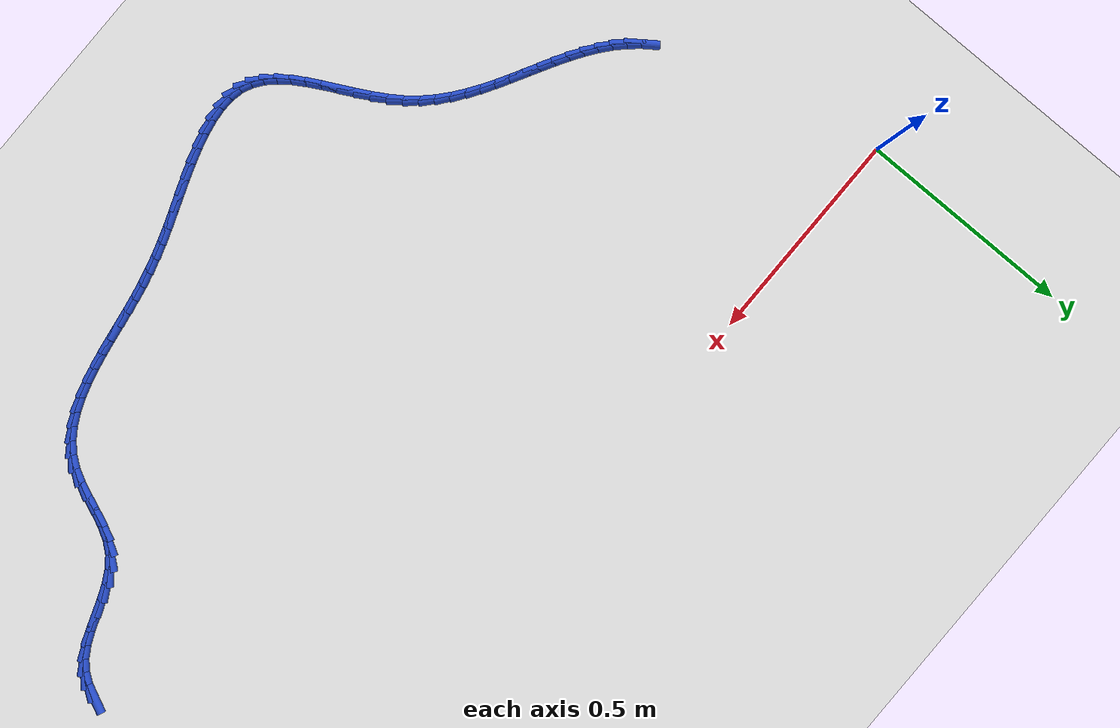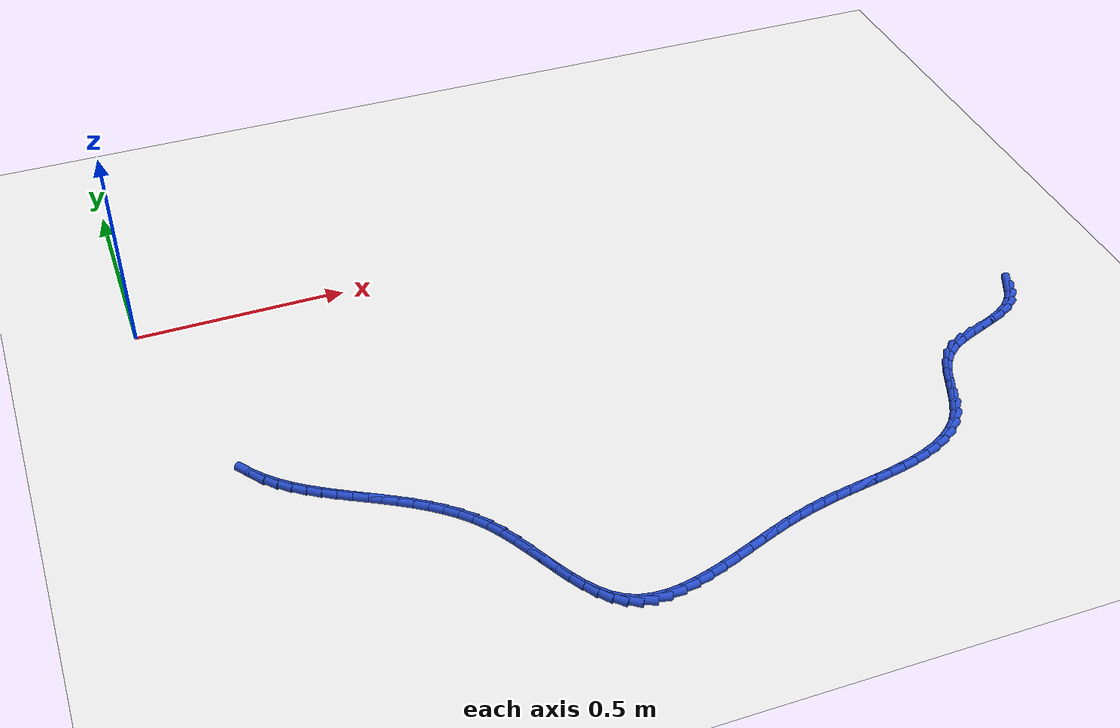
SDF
<sdf version="1.6">
 <world name="default">
  <model name="ground_plane">
   <static>1</static>
   <link name="link">
    <collision name="collision">
     <geometry><plane><normal>0 0 1</normal><size>100 100</size></plane></geometry>
     <surface><friction><ode><mu>100</mu><mu2>50</mu2></ode></friction></surface>
    </collision>
    <visual name="visual">
     <cast_shadows>0</cast_shadows>
     <geometry><plane><normal>0 0 1</normal><size>100 100</size></plane></geometry>
     <material>
      <script><uri>file://media/materials/scripts/gazebo.material</uri><name>Gazebo/WhiteGlow</name></script>
     </material>
    </visual>
   </link>
  </model>
  <model name="line">
   <link name="link_123">
    <pose>2.011440774890187 -0.5427158284624358 0.01 0 1.57 1.1276350709126346</pose>
    <collision name="collision">
     <geometry><cylinder><radius>0.01</radius><length>0.08</length></cylinder></geometry>
    </collision>
    <visual name="visual">
     <material>
      <script><name>Gazebo/Blue</name><uri>file://media/materials/scripts/gazebo.material</uri></script>
     </material>
     <geometry><cylinder><radius>0.01</radius><length>0.08</length></cylinder></geometry>
    </visual>
   </link>
   <link name="link_124">
    <pose>1.998832222102711 -0.5692798245409773 0.01 0 1.57 0.941484728141417</pose>
    <collision name="collision">
     <geometry><cylinder><radius>0.01</radius><length>0.08</length></cylinder></geometry>
    </collision>
    <visual name="visual">
     <material>
      <script><name>Gazebo/Blue</name><uri>file://media/materials/scripts/gazebo.material</uri></script>
     </material>
     <geometry><cylinder><radius>0.01</radius><length>0.08</length></cylinder></geometry>
    </visual>
   </link>
   <link name="link_125">
    <pose>1.9818800783524775 -0.5925637885946919 0.01 0 1.57 0.7327778433180387</pose>
    <collision name="collision">
     <geometry><cylinder><radius>0.01</radius><length>0.08</length></cylinder></geometry>
    </collision>
    <visual name="visual">
     <material>
      <script><name>Gazebo/Blue</name><uri>file://media/materials/scripts/gazebo.material</uri></script>
     </material>
     <geometry><cylinder><radius>0.01</radius><length>0.08</length></cylinder></geometry>
    </visual>
   </link>
   <link name="link_126">
    <pose>1.9600885038887024 -0.612174736084917 0.01 0 1.57 0.5379487129342684</pose>
    <collision name="collision">
     <geometry><cylinder><radius>0.01</radius><length>0.08</length></cylinder></geometry>
    </collision>
    <visual name="visual">
     <material>
      <script><name>Gazebo/Blue</name><uri>file://media/materials/scripts/gazebo.material</uri></script>
     </material>
     <geometry><cylinder><radius>0.01</radius><length>0.08</length></cylinder></geometry>
    </visual>
   </link>
   <link name="link_127">
    <pose>1.9334055124824718 -0.6280950013952556 0.01 0 1.57 0.4144781267353593</pose>
    <collision name="collision">
     <geometry><cylinder><radius>0.01</radius><length>0.08</length></cylinder></geometry>
    </collision>
    <visual name="visual">
     <material>
      <script><name>Gazebo/Blue</name><uri>file://media/materials/scripts/gazebo.material</uri></script>
     </material>
     <geometry><cylinder><radius>0.01</radius><length>0.08</length></cylinder></geometry>
    </visual>
   </link>
   <link name="link_128">
    <pose>1.9031035322931327 -0.6414268329267472 0.01 0 1.57 0.3561337204085206</pose>
    <collision name="collision">
     <geometry><cylinder><radius>0.01</radius><length>0.08</length></cylinder></geometry>
    </collision>
    <visual name="visual">
     <material>
      <script><name>Gazebo/Blue</name><uri>file://media/materials/scripts/gazebo.material</uri></script>
     </material>
     <geometry><cylinder><radius>0.01</radius><length>0.08</length></cylinder></geometry>
    </visual>
   </link>
   <link name="link_129">
    <pose>1.8707009320899681 -0.6534804444566524 0.01 0 1.57 0.35120852694235777</pose>
    <collision name="collision">
     <geometry><cylinder><radius>0.01</radius><length>0.08</length></cylinder></geometry>
    </collision>
    <visual name="visual">
     <material>
      <script><name>Gazebo/Blue</name><uri>file://media/materials/scripts/gazebo.material</uri></script>
     </material>
     <geometry><cylinder><radius>0.01</radius><length>0.08</length></cylinder></geometry>
    </visual>
   </link>
   <link name="link_130">
    <pose>1.8377160806422648 -0.6655660497622327 0.01 0 1.57 0.3967615347960139</pose>
    <collision name="collision">
     <geometry><cylinder><radius>0.01</radius><length>0.08</length></cylinder></geometry>
    </collision>
    <visual name="visual">
     <material>
      <script><name>Gazebo/Blue</name><uri>file://media/materials/scripts/gazebo.material</uri></script>
     </material>
     <geometry><cylinder><radius>0.01</radius><length>0.08</length></cylinder></geometry>
    </visual>
   </link>
   <link name="link_131">
    <pose>1.8056673467193067 -0.6789938626207493 0.01 0 1.57 0.4977285231843481</pose>
    <collision name="collision">
     <geometry><cylinder><radius>0.01</radius><length>0.08</length></cylinder></geometry>
    </collision>
    <visual name="visual">
     <material>
      <script><name>Gazebo/Blue</name><uri>file://media/materials/scripts/gazebo.material</uri></script>
     </material>
     <geometry><cylinder><radius>0.01</radius><length>0.08</length></cylinder></geometry>
    </visual>
   </link>
   <link name="link_132">
    <pose>1.7760730990903797 -0.6950740968094637 0.01 0 1.57 0.6638366270123021</pose>
    <collision name="collision">
     <geometry><cylinder><radius>0.01</radius><length>0.08</length></cylinder></geometry>
    </collision>
    <visual name="visual">
     <material>
      <script><name>Gazebo/Blue</name><uri>file://media/materials/scripts/gazebo.material</uri></script>
     </material>
     <geometry><cylinder><radius>0.01</radius><length>0.08</length></cylinder></geometry>
    </visual>
   </link>
   <link name="link_133">
    <pose>1.750451706524768 -0.7151169661056359 0.01 0 1.57 0.8802963728106666</pose>
    <collision name="collision">
     <geometry><cylinder><radius>0.01</radius><length>0.08</length></cylinder></geometry>
    </collision>
    <visual name="visual">
     <material>
      <script><name>Gazebo/Blue</name><uri>file://media/materials/scripts/gazebo.material</uri></script>
     </material>
     <geometry><cylinder><radius>0.01</radius><length>0.08</length></cylinder></geometry>
    </visual>
   </link>
   <link name="link_134">
    <pose>1.7298764774451143 -0.7400211088700062 0.01 0 1.57 1.0501637688929049</pose>
    <collision name="collision">
     <geometry><cylinder><radius>0.01</radius><length>0.08</length></cylinder></geometry>
    </collision>
    <visual name="visual">
     <material>
      <script><name>Gazebo/Blue</name><uri>file://media/materials/scripts/gazebo.material</uri></script>
     </material>
     <geometry><cylinder><radius>0.01</radius><length>0.08</length></cylinder></geometry>
    </visual>
   </link>
   <link name="link_135">
    <pose>1.7133772291660747 -0.768795418150637 0.01 0 1.57 1.1484908783348342</pose>
    <collision name="collision">
     <geometry><cylinder><radius>0.01</radius><length>0.08</length></cylinder></geometry>
    </collision>
    <visual name="visual">
     <material>
      <script><name>Gazebo/Blue</name><uri>file://media/materials/scripts/gazebo.material</uri></script>
     </material>
     <geometry><cylinder><radius>0.01</radius><length>0.08</length></cylinder></geometry>
    </visual>
   </link>
   <link name="link_136">
    <pose>1.6993976437584022 -0.7999067507100246 0.01 0 1.57 1.183549425898019</pose>
    <collision name="collision">
     <geometry><cylinder><radius>0.01</radius><length>0.08</length></cylinder></geometry>
    </collision>
    <visual name="visual">
     <material>
      <script><name>Gazebo/Blue</name><uri>file://media/materials/scripts/gazebo.material</uri></script>
     </material>
     <geometry><cylinder><radius>0.01</radius><length>0.08</length></cylinder></geometry>
    </visual>
   </link>
   <link name="link_137">
    <pose>1.6863813536909753 -0.831821917440679 0.01 0 1.57 1.159312930899949</pose>
    <collision name="collision">
     <geometry><cylinder><radius>0.01</radius><length>0.08</length></cylinder></geometry>
    </collision>
    <visual name="visual">
     <material>
      <script><name>Gazebo/Blue</name><uri>file://media/materials/scripts/gazebo.material</uri></script>
     </material>
     <geometry><cylinder><radius>0.01</radius><length>0.08</length></cylinder></geometry>
    </visual>
   </link>
   <link name="link_138">
    <pose>1.6727719914326735 -0.8630077292351106 0.01 0 1.57 1.0719167255808504</pose>
    <collision name="collision">
     <geometry><cylinder><radius>0.01</radius><length>0.08</length></cylinder></geometry>
    </collision>
    <visual name="visual">
     <material>
      <script><name>Gazebo/Blue</name><uri>file://media/materials/scripts/gazebo.material</uri></script>
     </material>
     <geometry><cylinder><radius>0.01</radius><length>0.08</length></cylinder></geometry>
    </visual>
   </link>
   <link name="link_139">
    <pose>1.6570131894523747 -0.8919309969858273 0.01 0 1.57 0.9175474965546561</pose>
    <collision name="collision">
     <geometry><cylinder><radius>0.01</radius><length>0.08</length></cylinder></geometry>
    </collision>
    <visual name="visual">
     <material>
      <script><name>Gazebo/Blue</name><uri>file://media/materials/scripts/gazebo.material</uri></script>
     </material>
     <geometry><cylinder><radius>0.01</radius><length>0.08</length></cylinder></geometry>
    </visual>
   </link>
   <link name="link_140">
    <pose>1.637683278868687 -0.9171875141560331 0.01 0 1.57 0.746915465940482</pose>
    <collision name="collision">
     <geometry><cylinder><radius>0.01</radius><length>0.08</length></cylinder></geometry>
    </collision>
    <visual name="visual">
     <material>
      <script><name>Gazebo/Blue</name><uri>file://media/materials/scripts/gazebo.material</uri></script>
     </material>
     <geometry><cylinder><radius>0.01</radius><length>0.08</length></cylinder></geometry>
    </visual>
   </link>
   <link name="link_141">
    <pose>1.614599635375489 -0.9385595386229677 0.01 0 1.57 0.5968930270052403</pose>
    <collision name="collision">
     <geometry><cylinder><radius>0.01</radius><length>0.08</length></cylinder></geometry>
    </collision>
    <visual name="visual">
     <material>
      <script><name>Gazebo/Blue</name><uri>file://media/materials/scripts/gazebo.material</uri></script>
     </material>
     <geometry><cylinder><radius>0.01</radius><length>0.08</length></cylinder></geometry>
    </visual>
   </link>
   <link name="link_142">
    <pose>1.5882470176756658 -0.9564683901721525 0.01 0 1.57 0.4720701001130039</pose>
    <collision name="collision">
     <geometry><cylinder><radius>0.01</radius><length>0.08</length></cylinder></geometry>
    </collision>
    <visual name="visual">
     <material>
      <script><name>Gazebo/Blue</name><uri>file://media/materials/scripts/gazebo.material</uri></script>
     </material>
     <geometry><cylinder><radius>0.01</radius><length>0.08</length></cylinder></geometry>
    </visual>
   </link>
   <link name="link_143">
    <pose>1.5591166407409245 -0.9713415708793648 0.01 0 1.57 0.37219896276411246</pose>
    <collision name="collision">
     <geometry><cylinder><radius>0.01</radius><length>0.08</length></cylinder></geometry>
    </collision>
    <visual name="visual">
     <material>
      <script><name>Gazebo/Blue</name><uri>file://media/materials/scripts/gazebo.material</uri></script>
     </material>
     <geometry><cylinder><radius>0.01</radius><length>0.08</length></cylinder></geometry>
    </visual>
   </link>
   <link name="link_144">
    <pose>1.5276997195429725 -0.9836065828203824 0.01 0 1.57 0.2947867559185957</pose>
    <collision name="collision">
     <geometry><cylinder><radius>0.01</radius><length>0.08</length></cylinder></geometry>
    </collision>
    <visual name="visual">
     <material>
      <script><name>Gazebo/Blue</name><uri>file://media/materials/scripts/gazebo.material</uri></script>
     </material>
     <geometry><cylinder><radius>0.01</radius><length>0.08</length></cylinder></geometry>
    </visual>
   </link>
   <link name="link_145">
    <pose>1.494487469053516 -0.9936909280709838 0.01 0 1.57 0.2368390231091276</pose>
    <collision name="collision">
     <geometry><cylinder><radius>0.01</radius><length>0.08</length></cylinder></geometry>
    </collision>
    <visual name="visual">
     <material>
      <script><name>Gazebo/Blue</name><uri>file://media/materials/scripts/gazebo.material</uri></script>
     </material>
     <geometry><cylinder><radius>0.01</radius><length>0.08</length></cylinder></geometry>
    </visual>
   </link>
   <link name="link_146">
    <pose>1.4599711042442631 -1.0020221087069452 0.01 0 1.57 0.19575292233344593</pose>
    <collision name="collision">
     <geometry><cylinder><radius>0.01</radius><length>0.08</length></cylinder></geometry>
    </collision>
    <visual name="visual">
     <material>
      <script><name>Gazebo/Blue</name><uri>file://media/materials/scripts/gazebo.material</uri></script>
     </material>
     <geometry><cylinder><radius>0.01</radius><length>0.08</length></cylinder></geometry>
    </visual>
   </link>
   <link name="link_147">
    <pose>1.4246418400869212 -1.0090276268040448 0.01 0 1.57 0.1696629120432263</pose>
    <collision name="collision">
     <geometry><cylinder><radius>0.01</radius><length>0.08</length></cylinder></geometry>
    </collision>
    <visual name="visual">
     <material>
      <script><name>Gazebo/Blue</name><uri>file://media/materials/scripts/gazebo.material</uri></script>
     </material>
     <geometry><cylinder><radius>0.01</radius><length>0.08</length></cylinder></geometry>
    </visual>
   </link>
   <link name="link_148">
    <pose>1.388990891553197 -1.0151349844380608 0.01 0 1.57 0.15754685205855098</pose>
    <collision name="collision">
     <geometry><cylinder><radius>0.01</radius><length>0.08</length></cylinder></geometry>
    </collision>
    <visual name="visual">
     <material>
      <script><name>Gazebo/Blue</name><uri>file://media/materials/scripts/gazebo.material</uri></script>
     </material>
     <geometry><cylinder><radius>0.01</radius><length>0.08</length></cylinder></geometry>
    </visual>
   </link>
   <link name="link_149">
    <pose>1.353509473614798 -1.020771683684771 0.01 0 1.57 0.15927782847282662</pose>
    <collision name="collision">
     <geometry><cylinder><radius>0.01</radius><length>0.08</length></cylinder></geometry>
    </collision>
    <visual name="visual">
     <material>
      <script><name>Gazebo/Blue</name><uri>file://media/materials/scripts/gazebo.material</uri></script>
     </material>
     <geometry><cylinder><radius>0.01</radius><length>0.08</length></cylinder></geometry>
    </visual>
   </link>
   <link name="link_150">
    <pose>1.318688801243431 -1.0263652266199519 0.01 0 1.57 0.1755641026237752</pose>
    <collision name="collision">
     <geometry><cylinder><radius>0.01</radius><length>0.08</length></cylinder></geometry>
    </collision>
    <visual name="visual">
     <material>
      <script><name>Gazebo/Blue</name><uri>file://media/materials/scripts/gazebo.material</uri></script>
     </material>
     <geometry><cylinder><radius>0.01</radius><length>0.08</length></cylinder></geometry>
    </visual>
   </link>
   <link name="link_151">
    <pose>1.2850072780819275 -1.0323400059043484 0.01 0 1.57 0.20246925600234678</pose>
    <collision name="collision">
     <geometry><cylinder><radius>0.01</radius><length>0.08</length></cylinder></geometry>
    </collision>
    <visual name="visual">
     <material>
      <script><name>Gazebo/Blue</name><uri>file://media/materials/scripts/gazebo.material</uri></script>
     </material>
     <geometry><cylinder><radius>0.01</radius><length>0.08</length></cylinder></geometry>
    </visual>
   </link>
   <link name="link_152">
    <pose>1.2525007741523402 -1.0390130076441677 0.01 0 1.57 0.23299982554936402</pose>
    <collision name="collision">
     <geometry><cylinder><radius>0.01</radius><length>0.08</length></cylinder></geometry>
    </collision>
    <visual name="visual">
     <material>
      <script><name>Gazebo/Blue</name><uri>file://media/materials/scripts/gazebo.material</uri></script>
     </material>
     <geometry><cylinder><radius>0.01</radius><length>0.08</length></cylinder></geometry>
    </visual>
   </link>
   <link name="link_153">
    <pose>1.220660488998973 -1.0465690219346817 0.01 0 1.57 0.265246948782197</pose>
    <collision name="collision">
     <geometry><cylinder><radius>0.01</radius><length>0.08</length></cylinder></geometry>
    </collision>
    <visual name="visual">
     <material>
      <script><name>Gazebo/Blue</name><uri>file://media/materials/scripts/gazebo.material</uri></script>
     </material>
     <geometry><cylinder><radius>0.01</radius><length>0.08</length></cylinder></geometry>
    </visual>
   </link>
   <link name="link_154">
    <pose>1.188944106920042 -1.0551847044449012 0.01 0 1.57 0.29748594899985353</pose>
    <collision name="collision">
     <geometry><cylinder><radius>0.01</radius><length>0.08</length></cylinder></geometry>
    </collision>
    <visual name="visual">
     <material>
      <script><name>Gazebo/Blue</name><uri>file://media/materials/scripts/gazebo.material</uri></script>
     </material>
     <geometry><cylinder><radius>0.01</radius><length>0.08</length></cylinder></geometry>
    </visual>
   </link>
   <link name="link_155">
    <pose>1.156809312213763 -1.0650367108438352 0.01 0 1.57 0.32786742728020457</pose>
    <collision name="collision">
     <geometry><cylinder><radius>0.01</radius><length>0.08</length></cylinder></geometry>
    </collision>
    <visual name="visual">
     <material>
      <script><name>Gazebo/Blue</name><uri>file://media/materials/scripts/gazebo.material</uri></script>
     </material>
     <geometry><cylinder><radius>0.01</radius><length>0.08</length></cylinder></geometry>
    </visual>
   </link>
   <link name="link_156">
    <pose>1.1237272505103661 -1.0762893700164113 0.01 0 1.57 0.34951504084366064</pose>
    <collision name="collision">
     <geometry><cylinder><radius>0.01</radius><length>0.08</length></cylinder></geometry>
    </collision>
    <visual name="visual">
     <material>
      <script><name>Gazebo/Blue</name><uri>file://media/materials/scripts/gazebo.material</uri></script>
     </material>
     <geometry><cylinder><radius>0.01</radius><length>0.08</length></cylinder></geometry>
    </visual>
   </link>
   <link name="link_157">
    <pose>1.089571630284136 -1.088738376803483 0.01 0 1.57 0.3570822246090999</pose>
    <collision name="collision">
     <geometry><cylinder><radius>0.01</radius><length>0.08</length></cylinder></geometry>
    </collision>
    <visual name="visual">
     <material>
      <script><name>Gazebo/Blue</name><uri>file://media/materials/scripts/gazebo.material</uri></script>
     </material>
     <geometry><cylinder><radius>0.01</radius><length>0.08</length></cylinder></geometry>
    </visual>
   </link>
   <link name="link_158">
    <pose>1.0546783340939279 -1.101756204915651 0.01 0 1.57 0.35153512150260846</pose>
    <collision name="collision">
     <geometry><cylinder><radius>0.01</radius><length>0.08</length></cylinder></geometry>
    </collision>
    <visual name="visual">
     <material>
      <script><name>Gazebo/Blue</name><uri>file://media/materials/scripts/gazebo.material</uri></script>
     </material>
     <geometry><cylinder><radius>0.01</radius><length>0.08</length></cylinder></geometry>
    </visual>
   </link>
   <link name="link_159">
    <pose>1.019408699391727 -1.1146920185595846 0.01 0 1.57 0.33296717263318765</pose>
    <collision name="collision">
     <geometry><cylinder><radius>0.01</radius><length>0.08</length></cylinder></geometry>
    </collision>
    <visual name="visual">
     <material>
      <script><name>Gazebo/Blue</name><uri>file://media/materials/scripts/gazebo.material</uri></script>
     </material>
     <geometry><cylinder><radius>0.01</radius><length>0.08</length></cylinder></geometry>
    </visual>
   </link>
   <link name="link_160">
    <pose>0.9841240636295189 -1.1268949819419507 0.01 0 1.57 0.30030285500081527</pose>
    <collision name="collision">
     <geometry><cylinder><radius>0.01</radius><length>0.08</length></cylinder></geometry>
    </collision>
    <visual name="visual">
     <material>
      <script><name>Gazebo/Blue</name><uri>file://media/materials/scripts/gazebo.material</uri></script>
     </material>
     <geometry><cylinder><radius>0.01</radius><length>0.08</length></cylinder></geometry>
    </visual>
   </link>
   <link name="link_161">
    <pose>0.9491857642592887 -1.1377142592694178 0.01 0 1.57 0.25121297593278735</pose>
    <collision name="collision">
     <geometry><cylinder><radius>0.01</radius><length>0.08</length></cylinder></geometry>
    </collision>
    <visual name="visual">
     <material>
      <script><name>Gazebo/Blue</name><uri>file://media/materials/scripts/gazebo.material</uri></script>
     </material>
     <geometry><cylinder><radius>0.01</radius><length>0.08</length></cylinder></geometry>
    </visual>
   </link>
   <link name="link_162">
    <pose>0.9149551387330231 -1.1464990147486545 0.01 0 1.57 0.18189645625176068</pose>
    <collision name="collision">
     <geometry><cylinder><radius>0.01</radius><length>0.08</length></cylinder></geometry>
    </collision>
    <visual name="visual">
     <material>
      <script><name>Gazebo/Blue</name><uri>file://media/materials/scripts/gazebo.material</uri></script>
     </material>
     <geometry><cylinder><radius>0.01</radius><length>0.08</length></cylinder></geometry>
    </visual>
   </link>
   <link name="link_163">
    <pose>0.8817935245027068 -1.1525984125863284 0.01 0 1.57 0.08686232161577971</pose>
    <collision name="collision">
     <geometry><cylinder><radius>0.01</radius><length>0.08</length></cylinder></geometry>
    </collision>
    <visual name="visual">
     <material>
      <script><name>Gazebo/Blue</name><uri>file://media/materials/scripts/gazebo.material</uri></script>
     </material>
     <geometry><cylinder><radius>0.01</radius><length>0.08</length></cylinder></geometry>
    </visual>
   </link>
   <link name="link_164">
    <pose>0.8500622590203253 -1.155361616989108 0.01 0 1.57 -0.040853743201707045</pose>
    <collision name="collision">
     <geometry><cylinder><radius>0.01</radius><length>0.08</length></cylinder></geometry>
    </collision>
    <visual name="visual">
     <material>
      <script><name>Gazebo/Blue</name><uri>file://media/materials/scripts/gazebo.material</uri></script>
     </material>
     <geometry><cylinder><radius>0.01</radius><length>0.08</length></cylinder></geometry>
    </visual>
   </link>
   <link name="link_165">
    <pose>0.8201226797378653 -1.1541377921636613 0.01 0 1.57 -0.20790588932168833</pose>
    <collision name="collision">
     <geometry><cylinder><radius>0.01</radius><length>0.08</length></cylinder></geometry>
    </collision>
    <visual name="visual">
     <material>
      <script><name>Gazebo/Blue</name><uri>file://media/materials/scripts/gazebo.material</uri></script>
     </material>
     <geometry><cylinder><radius>0.01</radius><length>0.08</length></cylinder></geometry>
    </visual>
   </link>
   <link name="link_166">
    <pose>0.7923361241073125 -1.1482761023166563 0.01 0 1.57 -0.41520953797653304</pose>
    <collision name="collision">
     <geometry><cylinder><radius>0.01</radius><length>0.08</length></cylinder></geometry>
    </collision>
    <visual name="visual">
     <material>
      <script><name>Gazebo/Blue</name><uri>file://media/materials/scripts/gazebo.material</uri></script>
     </material>
     <geometry><cylinder><radius>0.01</radius><length>0.08</length></cylinder></geometry>
    </visual>
   </link>
   <link name="link_167">
    <pose>0.767059650457425 -1.1371332479971532 0.01 0 1.57 -0.6297241700196375</pose>
    <collision name="collision">
     <geometry><cylinder><radius>0.01</radius><length>0.08</length></cylinder></geometry>
    </collision>
    <visual name="visual">
     <material>
      <script><name>Gazebo/Blue</name><uri>file://media/materials/scripts/gazebo.material</uri></script>
     </material>
     <geometry><cylinder><radius>0.01</radius><length>0.08</length></cylinder></geometry>
    </visual>
   </link>
   <link name="link_168">
    <pose>0.744353994315372 -1.1205878100490096 0.01 0 1.57 -0.8011943650261926</pose>
    <collision name="collision">
     <geometry><cylinder><radius>0.01</radius><length>0.08</length></cylinder></geometry>
    </collision>
    <visual name="visual">
     <material>
      <script><name>Gazebo/Blue</name><uri>file://media/materials/scripts/gazebo.material</uri></script>
     </material>
     <geometry><cylinder><radius>0.01</radius><length>0.08</length></cylinder></geometry>
    </visual>
   </link>
   <link name="link_169">
    <pose>0.7237962625314764 -1.0993701305544754 0.01 0 1.57 -0.9256008361770814</pose>
    <collision name="collision">
     <geometry><cylinder><radius>0.01</radius><length>0.08</length></cylinder></geometry>
    </collision>
    <visual name="visual">
     <material>
      <script><name>Gazebo/Blue</name><uri>file://media/materials/scripts/gazebo.material</uri></script>
     </material>
     <geometry><cylinder><radius>0.01</radius><length>0.08</length></cylinder></geometry>
    </visual>
   </link>
   <link name="link_170">
    <pose>0.7049189801204973 -1.07428906860955 0.01 0 1.57 -1.0101659834472152</pose>
    <collision name="collision">
     <geometry><cylinder><radius>0.01</radius><length>0.08</length></cylinder></geometry>
    </collision>
    <visual name="visual">
     <material>
      <script><name>Gazebo/Blue</name><uri>file://media/materials/scripts/gazebo.material</uri></script>
     </material>
     <geometry><cylinder><radius>0.01</radius><length>0.08</length></cylinder></geometry>
    </visual>
   </link>
   <link name="link_171">
    <pose>0.6872546720971946 -1.046153483310234 0.01 0 1.57 -1.0626838446588551</pose>
    <collision name="collision">
     <geometry><cylinder><radius>0.01</radius><length>0.08</length></cylinder></geometry>
    </collision>
    <visual name="visual">
     <material>
      <script><name>Gazebo/Blue</name><uri>file://media/materials/scripts/gazebo.material</uri></script>
     </material>
     <geometry><cylinder><radius>0.01</radius><length>0.08</length></cylinder></geometry>
    </visual>
   </link>
   <link name="link_172">
    <pose>0.6703358634763269 -1.0157722337525263 0.01 0 1.57 -1.0889199160310743</pose>
    <collision name="collision">
     <geometry><cylinder><radius>0.01</radius><length>0.08</length></cylinder></geometry>
    </collision>
    <visual name="visual">
     <material>
      <script><name>Gazebo/Blue</name><uri>file://media/materials/scripts/gazebo.material</uri></script>
     </material>
     <geometry><cylinder><radius>0.01</radius><length>0.08</length></cylinder></geometry>
    </visual>
   </link>
   <link name="link_173">
    <pose>0.6536950792726532 -0.9839541790324259 0.01 0 1.57 -1.0922888776937951</pose>
    <collision name="collision">
     <geometry><cylinder><radius>0.01</radius><length>0.08</length></cylinder></geometry>
    </collision>
    <visual name="visual">
     <material>
      <script><name>Gazebo/Blue</name><uri>file://media/materials/scripts/gazebo.material</uri></script>
     </material>
     <geometry><cylinder><radius>0.01</radius><length>0.08</length></cylinder></geometry>
    </visual>
   </link>
   <link name="link_174">
    <pose>0.6368648445009327 -0.9515081782459329 0.01 0 1.57 -1.0741282822494558</pose>
    <collision name="collision">
     <geometry><cylinder><radius>0.01</radius><length>0.08</length></cylinder></geometry>
    </collision>
    <visual name="visual">
     <material>
      <script><name>Gazebo/Blue</name><uri>file://media/materials/scripts/gazebo.material</uri></script>
     </material>
     <geometry><cylinder><radius>0.01</radius><length>0.08</length></cylinder></geometry>
    </visual>
   </link>
   <link name="link_175">
    <pose>0.619377684175925 -0.9192430904890472 0.01 0 1.57 -1.0339965176692294</pose>
    <collision name="collision">
     <geometry><cylinder><radius>0.01</radius><length>0.08</length></cylinder></geometry>
    </collision>
    <visual name="visual">
     <material>
      <script><name>Gazebo/Blue</name><uri>file://media/materials/scripts/gazebo.material</uri></script>
     </material>
     <geometry><cylinder><radius>0.01</radius><length>0.08</length></cylinder></geometry>
    </visual>
   </link>
   <link name="link_176">
    <pose>0.6007661233123883 -0.887967774857767 0.01 0 1.57 -0.9699336756592403</pose>
    <collision name="collision">
     <geometry><cylinder><radius>0.01</radius><length>0.08</length></cylinder></geometry>
    </collision>
    <visual name="visual">
     <material>
      <script><name>Gazebo/Blue</name><uri>file://media/materials/scripts/gazebo.material</uri></script>
     </material>
     <geometry><cylinder><radius>0.01</radius><length>0.08</length></cylinder></geometry>
    </visual>
   </link>
   <link name="link_177">
    <pose>0.5805626869250827 -0.8584910904480936 0.01 0 1.57 -0.8819358775680209</pose>
    <collision name="collision">
     <geometry><cylinder><radius>0.01</radius><length>0.08</length></cylinder></geometry>
    </collision>
    <visual name="visual">
     <material>
      <script><name>Gazebo/Blue</name><uri>file://media/materials/scripts/gazebo.material</uri></script>
     </material>
     <geometry><cylinder><radius>0.01</radius><length>0.08</length></cylinder></geometry>
    </visual>
   </link>
   <link name="link_178">
    <pose>0.5583613582414488 -0.8315288213029418 0.01 0 1.57 -0.7919161514236127</pose>
    <collision name="collision">
     <geometry><cylinder><radius>0.01</radius><length>0.08</length></cylinder></geometry>
    </collision>
    <visual name="visual">
     <material>
      <script><name>Gazebo/Blue</name><uri>file://media/materials/scripts/gazebo.material</uri></script>
     </material>
     <geometry><cylinder><radius>0.01</radius><length>0.08</length></cylinder></geometry>
    </visual>
   </link>
   <link name="link_179">
    <pose>0.5342293148953926 -0.8070801247919336 0.01 0 1.57 -0.712531296965564</pose>
    <collision name="collision">
     <geometry><cylinder><radius>0.01</radius><length>0.08</length></cylinder></geometry>
    </collision>
    <visual name="visual">
     <material>
      <script><name>Gazebo/Blue</name><uri>file://media/materials/scripts/gazebo.material</uri></script>
     </material>
     <geometry><cylinder><radius>0.01</radius><length>0.08</length></cylinder></geometry>
    </visual>
   </link>
   <link name="link_180">
    <pose>0.5084534830719591 -0.7848113612967889 0.01 0 1.57 -0.6452842387064784</pose>
    <collision name="collision">
     <geometry><cylinder><radius>0.01</radius><length>0.08</length></cylinder></geometry>
    </collision>
    <visual name="visual">
     <material>
      <script><name>Gazebo/Blue</name><uri>file://media/materials/scripts/gazebo.material</uri></script>
     </material>
     <geometry><cylinder><radius>0.01</radius><length>0.08</length></cylinder></geometry>
    </visual>
   </link>
   <link name="link_181">
    <pose>0.4813220006968503 -0.7643870560852369 0.01 0 1.57 -0.5908448871582361</pose>
    <collision name="collision">
     <geometry><cylinder><radius>0.01</radius><length>0.08</length></cylinder></geometry>
    </collision>
    <visual name="visual">
     <material>
      <script><name>Gazebo/Blue</name><uri>file://media/materials/scripts/gazebo.material</uri></script>
     </material>
     <geometry><cylinder><radius>0.01</radius><length>0.08</length></cylinder></geometry>
    </visual>
   </link>
   <link name="link_182">
    <pose>0.45312300569576736 -0.7454717344250065 0.01 0 1.57 -0.5493733261662601</pose>
    <collision name="collision">
     <geometry><cylinder><radius>0.01</radius><length>0.08</length></cylinder></geometry>
    </collision>
    <visual name="visual">
     <material>
      <script><name>Gazebo/Blue</name><uri>file://media/materials/scripts/gazebo.material</uri></script>
     </material>
     <geometry><cylinder><radius>0.01</radius><length>0.08</length></cylinder></geometry>
    </visual>
   </link>
   <link name="link_183">
    <pose>0.42414463599441127 -0.7277299215838268 0.01 0 1.57 -0.5207818247856565</pose>
    <collision name="collision">
     <geometry><cylinder><radius>0.01</radius><length>0.08</length></cylinder></geometry>
    </collision>
    <visual name="visual">
     <material>
      <script><name>Gazebo/Blue</name><uri>file://media/materials/scripts/gazebo.material</uri></script>
     </material>
     <geometry><cylinder><radius>0.01</radius><length>0.08</length></cylinder></geometry>
    </visual>
   </link>
   <link name="link_184">
    <pose>0.39467502951848504 -0.7108261428294278 0.01 0 1.57 -0.5049425716020411</pose>
    <collision name="collision">
     <geometry><cylinder><radius>0.01</radius><length>0.08</length></cylinder></geometry>
    </collision>
    <visual name="visual">
     <material>
      <script><name>Gazebo/Blue</name><uri>file://media/materials/scripts/gazebo.material</uri></script>
     </material>
     <geometry><cylinder><radius>0.01</radius><length>0.08</length></cylinder></geometry>
    </visual>
   </link>
   <link name="link_185">
    <pose>0.3650023241936892 -0.6944249234295379 0.01 0 1.57 -0.5018285365463424</pose>
    <collision name="collision">
     <geometry><cylinder><radius>0.01</radius><length>0.08</length></cylinder></geometry>
    </collision>
    <visual name="visual">
     <material>
      <script><name>Gazebo/Blue</name><uri>file://media/materials/scripts/gazebo.material</uri></script>
     </material>
     <geometry><cylinder><radius>0.01</radius><length>0.08</length></cylinder></geometry>
    </visual>
   </link>
   <link name="link_186">
    <pose>0.33541465794572567 -0.6781907886518868 0.01 0 1.57 -0.511592775039908</pose>
    <collision name="collision">
     <geometry><cylinder><radius>0.01</radius><length>0.08</length></cylinder></geometry>
    </collision>
    <visual name="visual">
     <material>
      <script><name>Gazebo/Blue</name><uri>file://media/materials/scripts/gazebo.material</uri></script>
     </material>
     <geometry><cylinder><radius>0.01</radius><length>0.08</length></cylinder></geometry>
    </visual>
   </link>
   <link name="link_187">
    <pose>0.30620016870029587 -0.6617882637642036 0.01 0 1.57 -0.5345918583380072</pose>
    <collision name="collision">
     <geometry><cylinder><radius>0.01</radius><length>0.08</length></cylinder></geometry>
    </collision>
    <visual name="visual">
     <material>
      <script><name>Gazebo/Blue</name><uri>file://media/materials/scripts/gazebo.material</uri></script>
     </material>
     <geometry><cylinder><radius>0.01</radius><length>0.08</length></cylinder></geometry>
    </visual>
   </link>
   <link name="link_188">
    <pose>0.27764699438310114 -0.6448818740342173 0.01 0 1.57 -0.5713497785179926</pose>
    <collision name="collision">
     <geometry><cylinder><radius>0.01</radius><length>0.08</length></cylinder></geometry>
    </collision>
    <visual name="visual">
     <material>
      <script><name>Gazebo/Blue</name><uri>file://media/materials/scripts/gazebo.material</uri></script>
     </material>
     <geometry><cylinder><radius>0.01</radius><length>0.08</length></cylinder></geometry>
    </visual>
   </link>
   <link name="link_189">
    <pose>0.25004327291984274 -0.627136144729657 0.01 0 1.57 -0.6224458554626018</pose>
    <collision name="collision">
     <geometry><cylinder><radius>0.01</radius><length>0.08</length></cylinder></geometry>
    </collision>
    <visual name="visual">
     <material>
      <script><name>Gazebo/Blue</name><uri>file://media/materials/scripts/gazebo.material</uri></script>
     </material>
     <geometry><cylinder><radius>0.01</radius><length>0.08</length></cylinder></geometry>
    </visual>
   </link>
   <link name="link_190">
    <pose>0.2236771422362233 -0.6082156011182523 0.01 0 1.57 -0.6883011197478061</pose>
    <collision name="collision">
     <geometry><cylinder><radius>0.01</radius><length>0.08</length></cylinder></geometry>
    </collision>
    <visual name="visual">
     <material>
      <script><name>Gazebo/Blue</name><uri>file://media/materials/scripts/gazebo.material</uri></script>
     </material>
     <geometry><cylinder><radius>0.01</radius><length>0.08</length></cylinder></geometry>
    </visual>
   </link>
   <link name="link_191">
    <pose>0.19883674025794376 -0.5877847684677324 0.01 0 1.57 -0.7688458764842742</pose>
    <collision name="collision">
     <geometry><cylinder><radius>0.01</radius><length>0.08</length></cylinder></geometry>
    </collision>
    <visual name="visual">
     <material>
      <script><name>Gazebo/Blue</name><uri>file://media/materials/scripts/gazebo.material</uri></script>
     </material>
     <geometry><cylinder><radius>0.01</radius><length>0.08</length></cylinder></geometry>
    </visual>
   </link>
   <link name="link_192">
    <pose>0.1758102049107057 -0.5655081720458264 0.01 0 1.57 -0.8602953792703364</pose>
    <collision name="collision">
     <geometry><cylinder><radius>0.01</radius><length>0.08</length></cylinder></geometry>
    </collision>
    <visual name="visual">
     <material>
      <script><name>Gazebo/Blue</name><uri>file://media/materials/scripts/gazebo.material</uri></script>
     </material>
     <geometry><cylinder><radius>0.01</radius><length>0.08</length></cylinder></geometry>
    </visual>
   </link>
   <link name="link_193">
    <pose>0.15482991328471354 -0.5411238280120524 0.01 0 1.57 -0.9464006995418448</pose>
    <collision name="collision">
     <geometry><cylinder><radius>0.01</radius><length>0.08</length></cylinder></geometry>
    </collision>
    <visual name="visual">
     <material>
      <script><name>Gazebo/Blue</name><uri>file://media/materials/scripts/gazebo.material</uri></script>
     </material>
     <geometry><cylinder><radius>0.01</radius><length>0.08</length></cylinder></geometry>
    </visual>
   </link>
  </model>
 </world>
</sdf>
